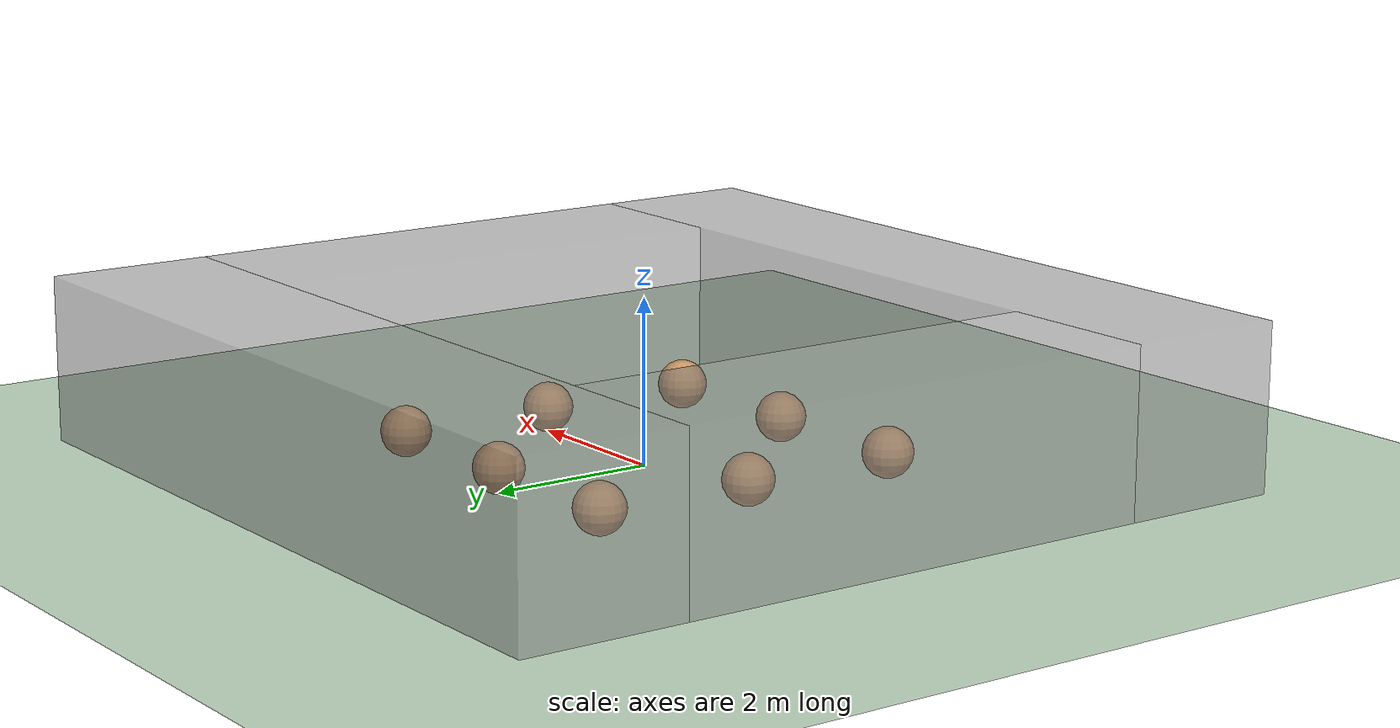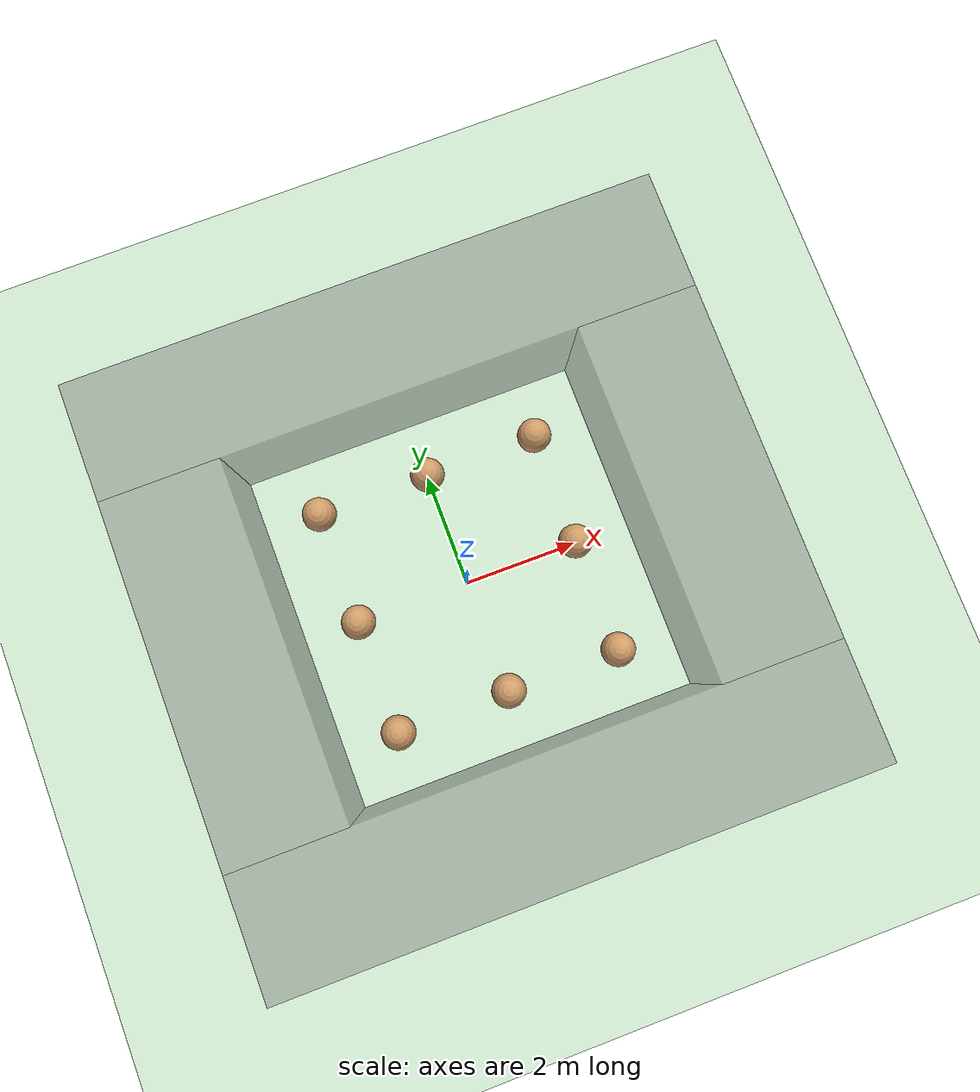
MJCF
<mujoco>
  <compiler inertiafromgeom="true" angle="degree" coordinate="local" />
  <option timestep="0.1" />
  <default>
    <joint limited='true' damping='0' armature='0' />
    <geom contype='1' conaffinity='1' condim='1' rgba='0.8 0.6 .4 1' margin="0.001" solref=".02 1" solimp=".8 .8 .01" material="geom" />
    <motor ctrlrange='-.4 .4' ctrllimited='true' />
  </default>

  <asset>
    <texture type="skybox" builtin="gradient" width="100" height="100" rgb1="1 1 1" rgb2="0 0 0" />
    <texture name="texgeom" type="cube" builtin="flat" mark="cross" width="127" height="1278" rgb1="0.8 0.6 0.4" rgb2="0.8 0.6 0.4" markrgb="1 1 1" random="0.01" />
    <texture name="texplane" type="2d" builtin="gradient" rgb1="0 0.3 0" rgb2="0 0.8 0" width="100" height="100" />
    <material name='MatPlane' texture="texplane" shininess="1" texrepeat="10 10" specular="1"  reflectance="0.5" />
    <material name='geom' texture="texgeom" texuniform="true" />
  </asset>

  <worldbody>
    <!-- floor -->
    <light directional="true" cutoff="100" exponent="1" diffuse="1 1 1"
      specular=".1 .1 .1" pos="0 0 1.3" dir="-0 0 -1.3" />
    <geom name='floor' material="MatPlane" pos='0 0 0' size='400 400 400'
      type='plane' conaffinity='1' rgba='0.8 0.9 0.8 1' condim='3' />

    <!-- billiards -->
    <body name="ball_0" pos="2 0 0.3">
      <joint type="free" limited='false'/>
      <geom type="sphere" pos="0 0 0" size="0.3"/>
    </body>
    <body name="ball_1" pos="-2 0 0.3">
      <joint type="free" limited='false'/>
      <geom type="sphere" pos="0 0 0" size="0.3"/>
    </body>
    <body name="ball_2" pos="0 2 0.3">
      <joint type="free" limited='false'/>
      <geom type="sphere" pos="0 0 0" size="0.3"/>
    </body>
    <body name="ball_3" pos="0 -2 0.3">
      <joint type="free" limited='false'/>
      <geom type="sphere" pos="0 0 0" size="0.3"/>
    </body>
    <body name="ball_4" pos="2 -2 0.3">
      <joint type="free" limited='false'/>
      <geom type="sphere" pos="0 0 0" size="0.3"/>
    </body>
    <body name="ball_5" pos="-2 -2 0.3">
      <joint type="free" limited='false'/>
      <geom type="sphere" pos="0 0 0" size="0.3"/>
    </body>
    <body name="ball_6" pos="-2 2 0.3">
      <joint type="free" limited='false'/>
      <geom type="sphere" pos="0 0 0" size="0.3"/>
    </body>
    <body name="ball_7" pos="2 2 0.3">
      <joint type="free" limited='false'/>
      <geom type="sphere" pos="0 0 0" size="0.3"/>
    </body>

    <!-- box -->
    <body name="box" pos="0 0 0">
      <joint name="box_slide_x" type='slide' pos='0 0 0' axis='1 0 0'
        limited='true' range='-2 2' armature='0'/>
      <joint name="box_slide_y" type='slide' pos='0 0 0' axis='0 1 0'
        limited='true' range='-2 2'/>
      <geom name='box_edge_south' type='box' pos='0 -4 1' size='5 1 1'
        friction='1 0 0' rgba='0.5 0.5 0.5 0.5'/>
      <geom name='box_edge_east' type='box' pos='4 0 1' size='1 3 1'
        friction='1 0 0' rgba='0.5 0.5 0.5 0.5'/>
      <geom name='box_edge_north' type='box' pos='0 4 1' size='5 1 1'
        friction='1 0 0' rgba='0.5 0.5 0.5 0.5'/>
      <geom name='box_edge_west' type='box' pos='-4 0 1' size='1 3 1'
        friction='1 0 0' rgba='0.5 0.5 0.5 0.5'/>
    </body>
  </worldbody>

  <actuator>
      <motor joint="box_slide_x" gear='10000' ctrlrange='-100 100'
        ctrllimited="true"/>
      <motor joint="box_slide_y" gear='10000' ctrlrange='-100 100'
        ctrllimited="true"/>
  </actuator>
</mujoco>
<!--
  TODO
  - make the policy able to control the box by sliding
-->
